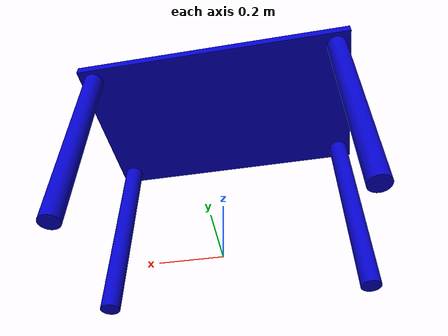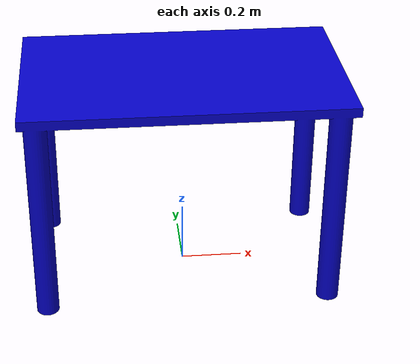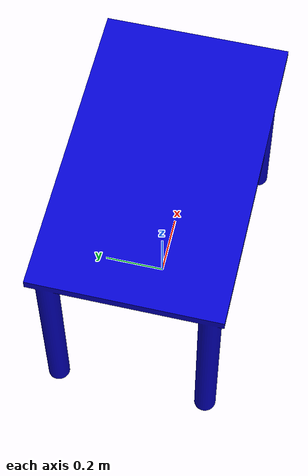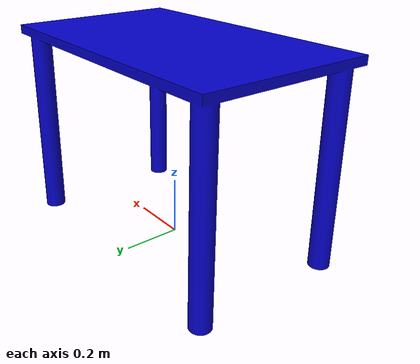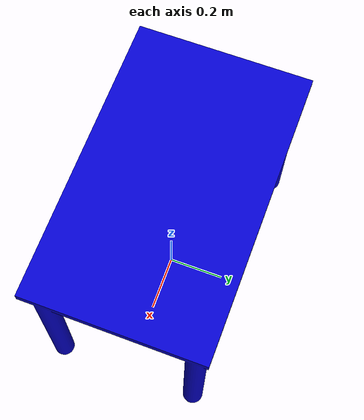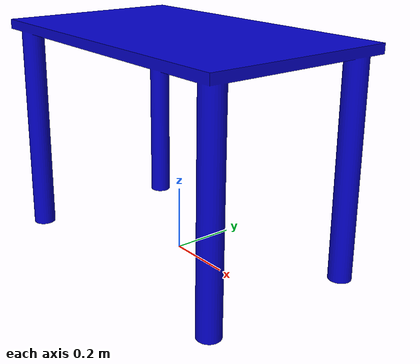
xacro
<?xml version="1.0"?>
<robot name='desk2'>
        <link name="world"/>
        <joint name="desk2_joint" type="fixed">
            <parent link="world"/>
            <child link="desk2_link"/>
        </joint>

        <link name="desk2_link">
            <inertial>
                <origin xyz="0.0 0.0 0.0" rpy="0.0 0.0 0.0"/>
                <mass value="6.614"/>
                <inertia ixx="0.098" ixy="0.0" ixz="0.0" iyy="0.098" iyz="0.0" izz="0.123"/>
            </inertial>
            <visual>
                <origin xyz="0.0 0.0 0.0" rpy="0.0 0.0 0.0"/>
                <geometry>
                    <mesh filename="package://pick_and_place/meshes/desk3.dae"/>
                </geometry>
            </visual>
            <collision>
                <origin xyz="0.0 0.0 0.0" rpy="0.0 0.0 0.0"/>
                <geometry>
                    <mesh filename="package://pick_and_place/meshes/desk3.dae"/>
                </geometry>
            </collision>
        </link>
</robot>
